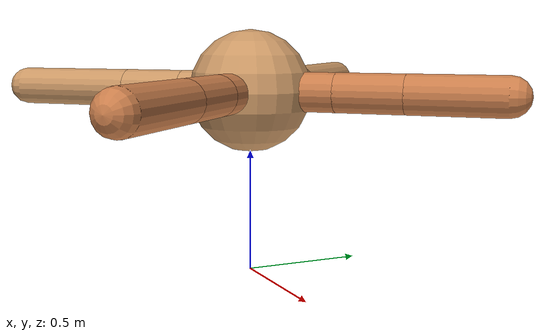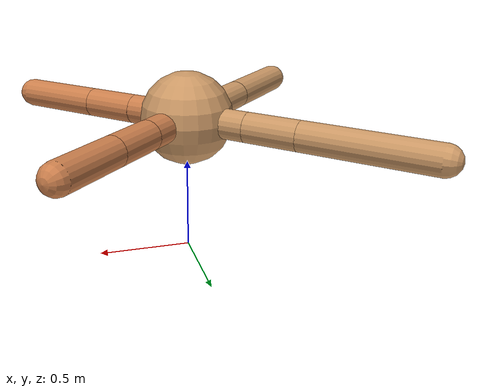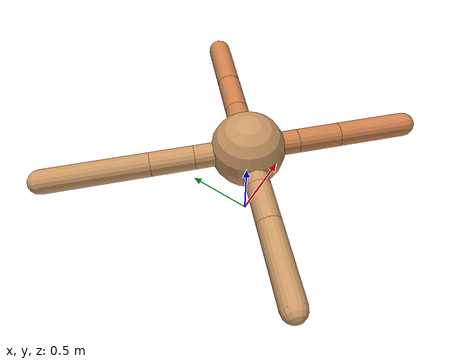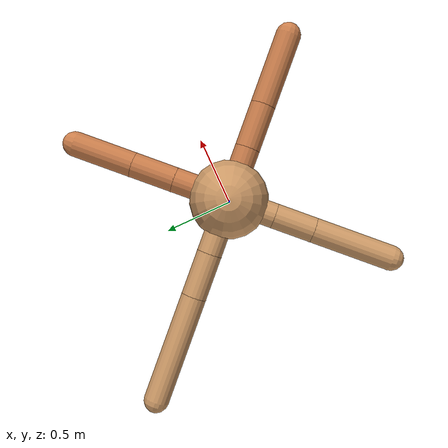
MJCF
<mujoco model="ant">
  <compiler angle="degree" coordinate="local" inertiafromgeom="true" />
  <option integrator="RK4" timestep="0.01" />
  <custom>
    <numeric data="0.0 0.0 0.55 1.0 0.0 0.0 0.0 0.0 1.0 0.0 -1.0 0.0 -1.0 0.0 1.0" name="init_qpos" />
  </custom>
  <default>
    <joint armature="1" damping="1" limited="true" />
    <geom conaffinity="0" condim="3" density="5.0" friction="1.5 0.1 0.1" margin="0.01" rgba="0.8 0.6 0.4 1" />
  </default>
  <worldbody>
    <body name="torso" pos="0 0 0.75">
      <geom name="torso_geom" pos="0 0 0" size="0.25" type="sphere" />

      <body name="front_left_leg" pos="0 0 0">
        <geom fromto="0.0 0.0 0.0 0.2556096356694516 0.2556096356694516 0.0" name="aux_1_geom" size="0.08" type="capsule" rgba=".8 .5 .3 1" />
        <body name="aux_1" pos="0.2556096356694516 0.2556096356694516 0.0">
          <joint axis="0 0 1" name="hip_1" pos="0.0 0.0 0.0" range="-40 40" type="hinge" />
          <geom fromto="0.0 0.0 0.0 0.19525107777885475 0.19525107777885475 0.0" name="left_leg_geom" size="0.08" type="capsule" rgba=".8 .5 .3 1" />
          <body pos="0.19525107777885475 0.19525107777885475 0.0" name="front_left_foot">
            <joint axis="-1 1 0" name="ankle_1" pos="0.0 0.0 0.0" range="30 100" type="hinge" />
            <geom fromto="0.0 0.0 0.0 0.27061543486280865 0.27061543486280865 0.0" name="left_ankle_geom" size="0.08" type="capsule" rgba=".8 .5 .3 1" />
          </body>
        </body>
      </body>
      <body name="front_right_leg" pos="0 0 0">
        <geom fromto="0.0 0.0 0.0 -0.2542787247911908 0.2542787247911908 0.0" name="aux_2_geom" size="0.08" type="capsule" />
        <body name="aux_2" pos="-0.2542787247911908 0.2542787247911908 0.0">
          <joint axis="0 0 1" name="hip_2" pos="0.0 0.0 0.0" range="-40 40" type="hinge" />
          <geom fromto="0.0 0.0 0.0 -0.2025935017426468 0.2025935017426468 0.0" name="right_leg_geom" size="0.08" type="capsule" />
          <body pos="-0.2025935017426468 0.2025935017426468 0.0" name="front_right_foot">
            <joint axis="1 1 0" name="ankle_2" pos="0.0 0.0 0.0" range="-100 -30" type="hinge" />
            <geom fromto="0.0 0.0 0.0 -0.48631366751661703 0.48631366751661703 0.0" name="right_ankle_geom" size="0.08" type="capsule" />
          </body>
        </body>
      </body>
      <body name="left_back_leg" pos="0 0 0">
        <geom fromto="0.0 0.0 0.0 -0.21399589823953394 -0.21399589823953394 0.0" name="aux_3_geom" size="0.08" type="capsule" />
        <body name="aux_3" pos="-0.21399589823953394 -0.21399589823953394 0.0">
          <joint axis="0 0 1" name="hip_3" pos="0.0 0.0 0.0" range="-40 40" type="hinge" />
          <geom fromto="0.0 0.0 0.0 -0.1837639673776609 -0.1837639673776609 0.0" name="back_leg_geom" size="0.08" type="capsule" />
          <body pos="-0.1837639673776609 -0.1837639673776609 0.0" name="left_back_foot">
            <joint axis="-1 1 0" name="ankle_3" pos="0.0 0.0 0.0" range="-100 -30" type="hinge" />
            <geom fromto="0.0 0.0 0.0 -0.3640194516207391 -0.3640194516207391 0.0" name="third_ankle_geom" size="0.08" type="capsule" />
          </body>
        </body>
      </body>
      <body name="right_back_leg" pos="0 0 0">
        <geom fromto="0.0 0.0 0.0 0.24066104008044095 -0.24066104008044095 0.0" name="aux_4_geom" size="0.08" type="capsule" rgba=".8 .5 .3 1" />
        <body name="aux_4" pos="0.24066104008044095 -0.24066104008044095 0.0">
          <joint axis="0 0 1" name="hip_4" pos="0.0 0.0 0.0" range="-40 40" type="hinge" />
          <geom fromto="0.0 0.0 0.0 0.2028761579504816 -0.2028761579504816 0.0" name="rightback_leg_geom" size="0.08" type="capsule" rgba=".8 .5 .3 1" />
          <body pos="0.2028761579504816 -0.2028761579504816 0.0" name="right_back_foot">
            <joint axis="1 1 0" name="ankle_4" pos="0.0 0.0 0.0" range="30 100" type="hinge" />
            <geom fromto="0.0 0.0 0.0 0.3294918814251718 -0.3294918814251718 0.0" name="fourth_ankle_geom" size="0.08" type="capsule" rgba=".8 .5 .3 1" />
          </body>
        </body>
      </body>
    </body>
  </worldbody>
  <actuator>
    <motor ctrllimited="true" ctrlrange="-1.0 1.0" joint="hip_4" gear="150" />
    <motor ctrllimited="true" ctrlrange="-1.0 1.0" joint="ankle_4" gear="150" />
    <motor ctrllimited="true" ctrlrange="-1.0 1.0" joint="hip_1" gear="150" />
    <motor ctrllimited="true" ctrlrange="-1.0 1.0" joint="ankle_1" gear="150" />
    <motor ctrllimited="true" ctrlrange="-1.0 1.0" joint="hip_2" gear="150" />
    <motor ctrllimited="true" ctrlrange="-1.0 1.0" joint="ankle_2" gear="150" />
    <motor ctrllimited="true" ctrlrange="-1.0 1.0" joint="hip_3" gear="150" />
    <motor ctrllimited="true" ctrlrange="-1.0 1.0" joint="ankle_3" gear="150" />
  </actuator>
</mujoco>
